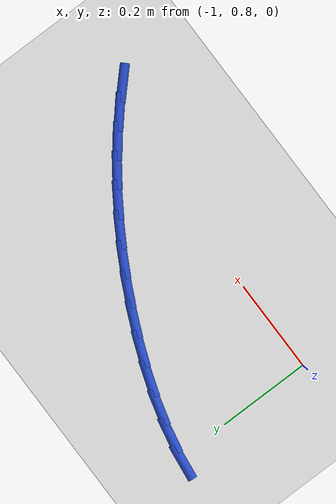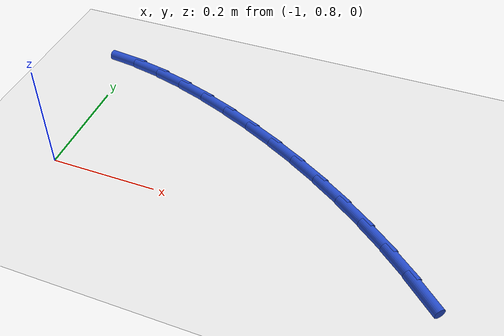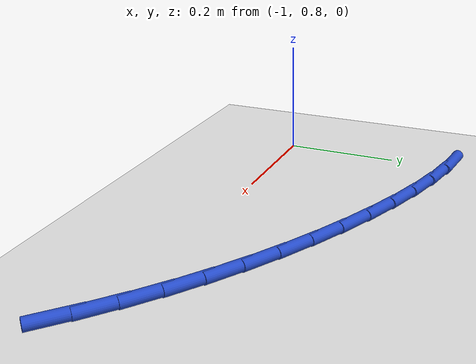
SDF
<sdf version="1.6">
 <world name="default">
  <model name="ground_plane">
   <static>1</static>
   <link name="link">
    <collision name="collision">
     <geometry><plane><normal>0 0 1</normal><size>100 100</size></plane></geometry>
     <surface><friction><ode><mu>100</mu><mu2>50</mu2></ode></friction></surface>
    </collision>
    <visual name="visual">
     <cast_shadows>0</cast_shadows>
     <geometry><plane><normal>0 0 1</normal><size>100 100</size></plane></geometry>
     <material>
      <script><uri>file://media/materials/scripts/gazebo.material</uri><name>Gazebo/WhiteGlow</name></script>
     </material>
    </visual>
   </link>
  </model>
  <model name="line">
   <link name="link_14">
    <pose>-0.32153448097954956 0.7451698416834877 0.01 0 1.57 -0.7593834667420015</pose>
    <collision name="collision">
     <geometry><cylinder><radius>0.01</radius><length>0.08</length></cylinder></geometry>
    </collision>
    <visual name="visual">
     <material>
      <script><name>Gazebo/Blue</name><uri>file://media/materials/scripts/gazebo.material</uri></script>
     </material>
     <geometry><cylinder><radius>0.01</radius><length>0.08</length></cylinder></geometry>
    </visual>
   </link>
   <link name="link_15">
    <pose>-0.36443854714278495 0.7858977562999002 0.01 0 1.57 -0.7114652606932764</pose>
    <collision name="collision">
     <geometry><cylinder><radius>0.01</radius><length>0.08</length></cylinder></geometry>
    </collision>
    <visual name="visual">
     <material>
      <script><name>Gazebo/Blue</name><uri>file://media/materials/scripts/gazebo.material</uri></script>
     </material>
     <geometry><cylinder><radius>0.01</radius><length>0.08</length></cylinder></geometry>
    </visual>
   </link>
   <link name="link_16">
    <pose>-0.4094380561452617 0.8246909177118149 0.01 0 1.57 -0.6650890875555893</pose>
    <collision name="collision">
     <geometry><cylinder><radius>0.01</radius><length>0.08</length></cylinder></geometry>
    </collision>
    <visual name="visual">
     <material>
      <script><name>Gazebo/Blue</name><uri>file://media/materials/scripts/gazebo.material</uri></script>
     </material>
     <geometry><cylinder><radius>0.01</radius><length>0.08</length></cylinder></geometry>
    </visual>
   </link>
   <link name="link_17">
    <pose>-0.4564313182301543 0.8615473460093895 0.01 0 1.57 -0.6202444159162732</pose>
    <collision name="collision">
     <geometry><cylinder><radius>0.01</radius><length>0.08</length></cylinder></geometry>
    </collision>
    <visual name="visual">
     <material>
      <script><name>Gazebo/Blue</name><uri>file://media/materials/scripts/gazebo.material</uri></script>
     </material>
     <geometry><cylinder><radius>0.01</radius><length>0.08</length></cylinder></geometry>
    </visual>
   </link>
   <link name="link_18">
    <pose>-0.505316643640637 0.8964650612827811 0.01 0 1.57 -0.5768996637887489</pose>
    <collision name="collision">
     <geometry><cylinder><radius>0.01</radius><length>0.08</length></cylinder></geometry>
    </collision>
    <visual name="visual">
     <material>
      <script><name>Gazebo/Blue</name><uri>file://media/materials/scripts/gazebo.material</uri></script>
     </material>
     <geometry><cylinder><radius>0.01</radius><length>0.08</length></cylinder></geometry>
    </visual>
   </link>
   <link name="link_19">
    <pose>-0.5559923426198846 0.929442083622148 0.01 0 1.57 -0.5350060119845734</pose>
    <collision name="collision">
     <geometry><cylinder><radius>0.01</radius><length>0.08</length></cylinder></geometry>
    </collision>
    <visual name="visual">
     <material>
      <script><name>Gazebo/Blue</name><uri>file://media/materials/scripts/gazebo.material</uri></script>
     </material>
     <geometry><cylinder><radius>0.01</radius><length>0.08</length></cylinder></geometry>
    </visual>
   </link>
   <link name="link_20">
    <pose>-0.6083567254110714 0.9604764331176473 0.01 0 1.57 -0.4945009512730242</pose>
    <collision name="collision">
     <geometry><cylinder><radius>0.01</radius><length>0.08</length></cylinder></geometry>
    </collision>
    <visual name="visual">
     <material>
      <script><name>Gazebo/Blue</name><uri>file://media/materials/scripts/gazebo.material</uri></script>
     </material>
     <geometry><cylinder><radius>0.01</radius><length>0.08</length></cylinder></geometry>
    </visual>
   </link>
   <link name="link_21">
    <pose>-0.6623081022573717 0.9895661298594365 0.01 0 1.57 -0.4553114538631929</pose>
    <collision name="collision">
     <geometry><cylinder><radius>0.01</radius><length>0.08</length></cylinder></geometry>
    </collision>
    <visual name="visual">
     <material>
      <script><name>Gazebo/Blue</name><uri>file://media/materials/scripts/gazebo.material</uri></script>
     </material>
     <geometry><cylinder><radius>0.01</radius><length>0.08</length></cylinder></geometry>
    </visual>
   </link>
   <link name="link_22">
    <pose>-0.7177447834005584 1.0167091939345185 0.01 0 1.57 -0.4162921316950382</pose>
    <collision name="collision">
     <geometry><cylinder><radius>0.01</radius><length>0.08</length></cylinder></geometry>
    </collision>
    <visual name="visual">
     <material>
      <script><name>Gazebo/Blue</name><uri>file://media/materials/scripts/gazebo.material</uri></script>
     </material>
     <geometry><cylinder><radius>0.01</radius><length>0.08</length></cylinder></geometry>
    </visual>
   </link>
   <link name="link_23">
    <pose>-0.774525074225694 1.0418136092919839 0.01 0 1.57 -0.37284447281477273</pose>
    <collision name="collision">
     <geometry><cylinder><radius>0.01</radius><length>0.08</length></cylinder></geometry>
    </collision>
    <visual name="visual">
     <material>
      <script><name>Gazebo/Blue</name><uri>file://media/materials/scripts/gazebo.material</uri></script>
     </material>
     <geometry><cylinder><radius>0.01</radius><length>0.08</length></cylinder></geometry>
    </visual>
   </link>
   <link name="link_24">
    <pose>-0.8323488289762744 1.0644307449594472 0.01 0 1.57 -0.32303650151299945</pose>
    <collision name="collision">
     <geometry><cylinder><radius>0.01</radius><length>0.08</length></cylinder></geometry>
    </collision>
    <visual name="visual">
     <material>
      <script><name>Gazebo/Blue</name><uri>file://media/materials/scripts/gazebo.material</uri></script>
     </material>
     <geometry><cylinder><radius>0.01</radius><length>0.08</length></cylinder></geometry>
    </visual>
   </link>
   <link name="link_25">
    <pose>-0.8908766773467668 1.0840236900106295 0.01 0 1.57 -0.26578153624166656</pose>
    <collision name="collision">
     <geometry><cylinder><radius>0.01</radius><length>0.08</length></cylinder></geometry>
    </collision>
    <visual name="visual">
     <material>
      <script><name>Gazebo/Blue</name><uri>file://media/materials/scripts/gazebo.material</uri></script>
     </material>
     <geometry><cylinder><radius>0.01</radius><length>0.08</length></cylinder></geometry>
    </visual>
   </link>
   <link name="link_26">
    <pose>-0.9497692490316387 1.1000555335192526 0.01 0 1.57 -0.19984636415239632</pose>
    <collision name="collision">
     <geometry><cylinder><radius>0.01</radius><length>0.08</length></cylinder></geometry>
    </collision>
    <visual name="visual">
     <material>
      <script><name>Gazebo/Blue</name><uri>file://media/materials/scripts/gazebo.material</uri></script>
     </material>
     <geometry><cylinder><radius>0.01</radius><length>0.08</length></cylinder></geometry>
    </visual>
   </link>
   <link name="link_27">
    <pose>-1.0086871737253578 1.1119893645590375 0.01 0 1.57 -0.1239083809096533</pose>
    <collision name="collision">
     <geometry><cylinder><radius>0.01</radius><length>0.08</length></cylinder></geometry>
    </collision>
    <visual name="visual">
     <material>
      <script><name>Gazebo/Blue</name><uri>file://media/materials/scripts/gazebo.material</uri></script>
     </material>
     <geometry><cylinder><radius>0.01</radius><length>0.08</length></cylinder></geometry>
    </visual>
   </link>
  </model>
 </world>
</sdf>
